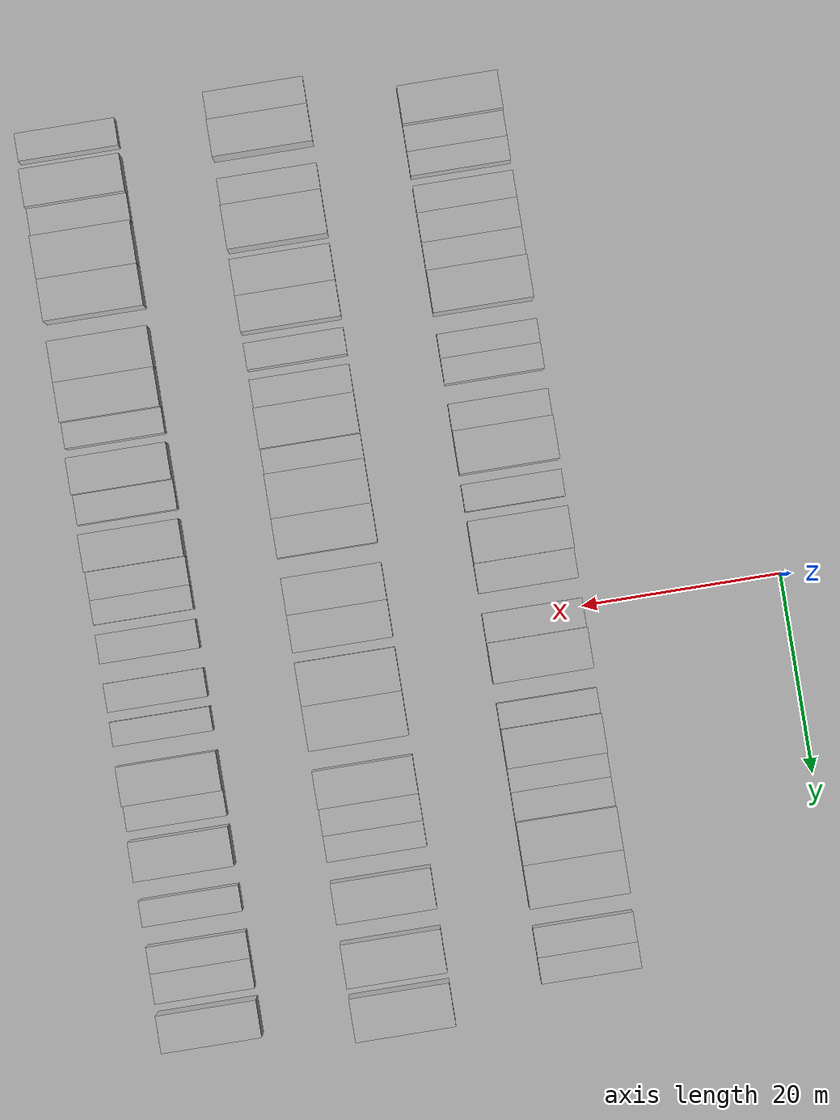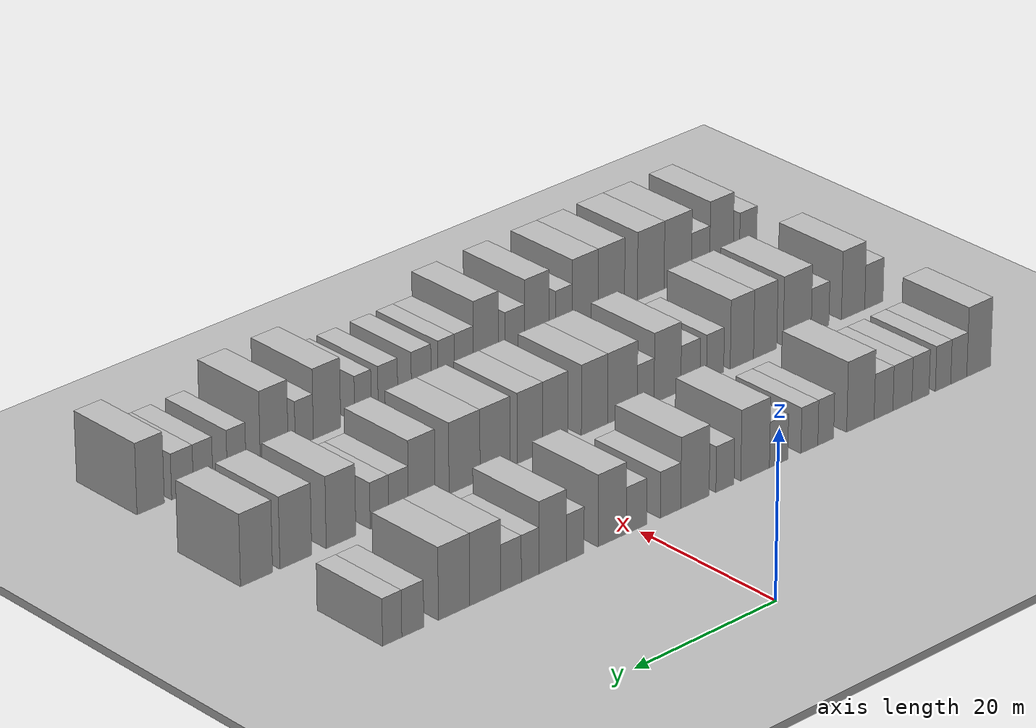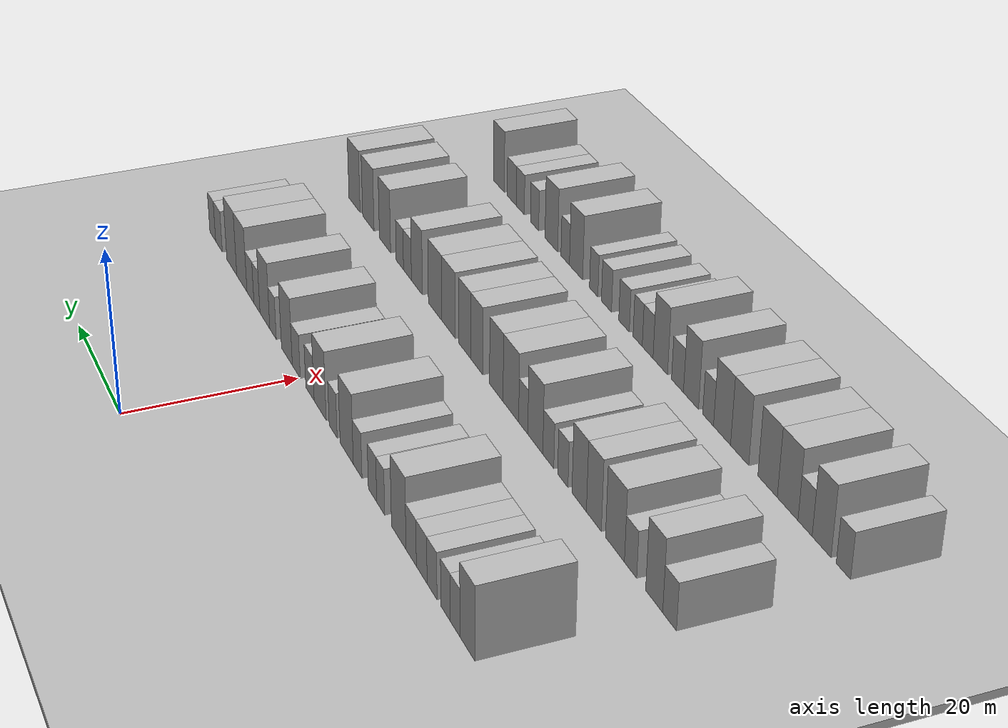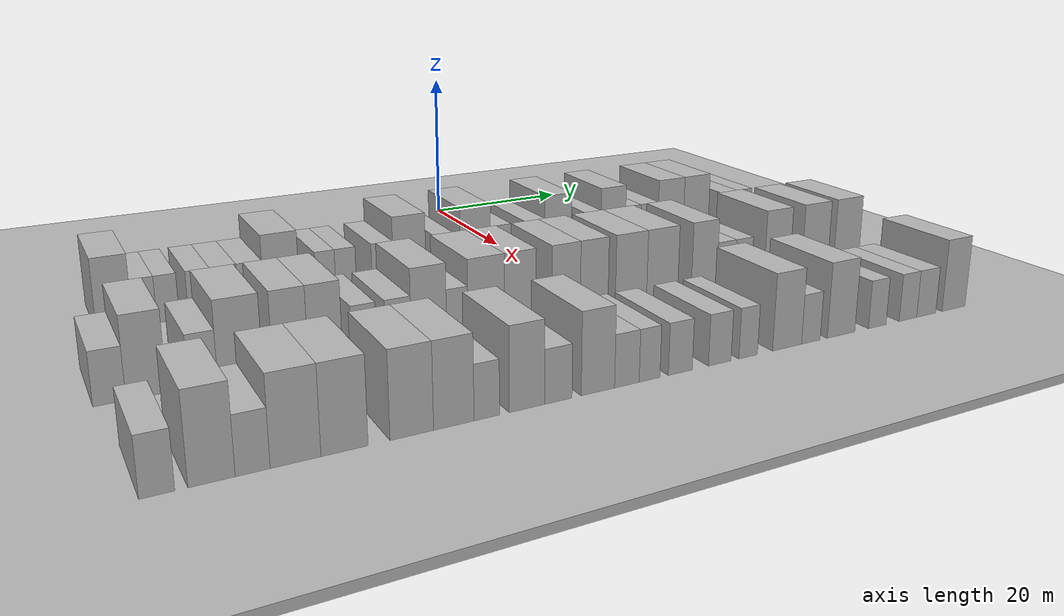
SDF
<sdf version="1.6">
 <world name="default">
  <include><name>ground_plane_1</name><uri>model://HANNAS_ground_plane</uri></include>
  <include>
   <name>ground_plane_2</name>
   <uri>model://HANNAS_ground_plane</uri>
   <pose>100 0 0  0 0 0</pose>
  </include>
  <model name="building_50">
   <static>1</static>
   <pose>25.0000 -51.5060 0 0.000000 0.000000 0.000000</pose>
   <link name="link">
    <pose>0 0 4.50 0 0 0</pose>
    <collision name="collision"><geometry><box><size>10.0000 3.7880 9.0000</size></box></geometry></collision>
    <visual name="visual">
     <cast_shadows>0</cast_shadows>
     <geometry><box><size>10.0000 3.7880 9.0000</size></box></geometry>
     <material>
      <script>
       <uri>model://HANNAS_wall/materials/scripts</uri>
       <uri>model://HANNAS_wall/materials/textures</uri>
       <name>vrc/HANNAS_wall</name>
      </script>
     </material>
    </visual>
   </link>
  </model>
  <model name="building_51">
   <static>1</static>
   <pose>25.0000 -48.3364 0 0.000000 0.000000 0.000000</pose>
   <link name="link">
    <pose>0 0 3.00 0 0 0</pose>
    <collision name="collision"><geometry><box><size>10.0000 2.5512 6.0000</size></box></geometry></collision>
    <visual name="visual">
     <cast_shadows>0</cast_shadows>
     <geometry><box><size>10.0000 2.5512 6.0000</size></box></geometry>
     <material>
      <script>
       <uri>model://HANNAS_wall/materials/scripts</uri>
       <uri>model://HANNAS_wall/materials/textures</uri>
       <name>vrc/HANNAS_wall</name>
      </script>
     </material>
    </visual>
   </link>
  </model>
  <model name="building_52">
   <static>1</static>
   <pose>25.0000 -45.8467 0 0.000000 0.000000 0.000000</pose>
   <link name="link">
    <pose>0 0 3.00 0 0 0</pose>
    <collision name="collision"><geometry><box><size>10.0000 2.4283 6.0000</size></box></geometry></collision>
    <visual name="visual">
     <cast_shadows>0</cast_shadows>
     <geometry><box><size>10.0000 2.4283 6.0000</size></box></geometry>
     <material>
      <script>
       <uri>model://HANNAS_wall/materials/scripts</uri>
       <uri>model://HANNAS_wall/materials/textures</uri>
       <name>vrc/HANNAS_wall</name>
      </script>
     </material>
    </visual>
   </link>
  </model>
  <model name="building_53">
   <static>1</static>
   <pose>25.0000 -42.2886 0 0.000000 0.000000 0.000000</pose>
   <link name="link">
    <pose>0 0 3.00 0 0 0</pose>
    <collision name="collision"><geometry><box><size>10.0000 2.6879 6.0000</size></box></geometry></collision>
    <visual name="visual">
     <cast_shadows>0</cast_shadows>
     <geometry><box><size>10.0000 2.6879 6.0000</size></box></geometry>
     <material>
      <script>
       <uri>model://HANNAS_wall/materials/scripts</uri>
       <uri>model://HANNAS_wall/materials/textures</uri>
       <name>vrc/HANNAS_wall</name>
      </script>
     </material>
    </visual>
   </link>
  </model>
  <model name="building_54">
   <static>1</static>
   <pose>25.0000 -39.4594 0 0.000000 0.000000 0.000000</pose>
   <link name="link">
    <pose>0 0 3.00 0 0 0</pose>
    <collision name="collision"><geometry><box><size>10.0000 2.9706 6.0000</size></box></geometry></collision>
    <visual name="visual">
     <cast_shadows>0</cast_shadows>
     <geometry><box><size>10.0000 2.9706 6.0000</size></box></geometry>
     <material>
      <script>
       <uri>model://HANNAS_wall/materials/scripts</uri>
       <uri>model://HANNAS_wall/materials/textures</uri>
       <name>vrc/HANNAS_wall</name>
      </script>
     </material>
    </visual>
   </link>
  </model>
  <model name="building_55">
   <static>1</static>
   <pose>25.0000 -36.5137 0 0.000000 0.000000 0.000000</pose>
   <link name="link">
    <pose>0 0 3.00 0 0 0</pose>
    <collision name="collision"><geometry><box><size>10.0000 2.9208 6.0000</size></box></geometry></collision>
    <visual name="visual">
     <cast_shadows>0</cast_shadows>
     <geometry><box><size>10.0000 2.9208 6.0000</size></box></geometry>
     <material>
      <script>
       <uri>model://HANNAS_wall/materials/scripts</uri>
       <uri>model://HANNAS_wall/materials/textures</uri>
       <name>vrc/HANNAS_wall</name>
      </script>
     </material>
    </visual>
   </link>
  </model>
  <model name="building_56">
   <static>1</static>
   <pose>25.0000 -32.9342 0 0.000000 0.000000 0.000000</pose>
   <link name="link">
    <pose>0 0 4.50 0 0 0</pose>
    <collision name="collision"><geometry><box><size>10.0000 4.2382 9.0000</size></box></geometry></collision>
    <visual name="visual">
     <cast_shadows>0</cast_shadows>
     <geometry><box><size>10.0000 4.2382 9.0000</size></box></geometry>
     <material>
      <script>
       <uri>model://HANNAS_wall/materials/scripts</uri>
       <uri>model://HANNAS_wall/materials/textures</uri>
       <name>vrc/HANNAS_wall</name>
      </script>
     </material>
    </visual>
   </link>
  </model>
  <model name="building_57">
   <static>1</static>
   <pose>25.0000 -27.6060 0 0.000000 0.000000 0.000000</pose>
   <link name="link">
    <pose>0 0 3.00 0 0 0</pose>
    <collision name="collision"><geometry><box><size>10.0000 2.4181 6.0000</size></box></geometry></collision>
    <visual name="visual">
     <cast_shadows>0</cast_shadows>
     <geometry><box><size>10.0000 2.4181 6.0000</size></box></geometry>
     <material>
      <script>
       <uri>model://HANNAS_wall/materials/scripts</uri>
       <uri>model://HANNAS_wall/materials/textures</uri>
       <name>vrc/HANNAS_wall</name>
      </script>
     </material>
    </visual>
   </link>
  </model>
  <model name="building_58">
   <static>1</static>
   <pose>25.0000 -25.1099 0 0.000000 0.000000 0.000000</pose>
   <link name="link">
    <pose>0 0 3.00 0 0 0</pose>
    <collision name="collision"><geometry><box><size>10.0000 2.5742 6.0000</size></box></geometry></collision>
    <visual name="visual">
     <cast_shadows>0</cast_shadows>
     <geometry><box><size>10.0000 2.5742 6.0000</size></box></geometry>
     <material>
      <script>
       <uri>model://HANNAS_wall/materials/scripts</uri>
       <uri>model://HANNAS_wall/materials/textures</uri>
       <name>vrc/HANNAS_wall</name>
      </script>
     </material>
    </visual>
   </link>
  </model>
  <model name="building_59">
   <static>1</static>
   <pose>25.0000 -20.4448 0 0.000000 0.000000 0.000000</pose>
   <link name="link">
    <pose>0 0 3.00 0 0 0</pose>
    <collision name="collision"><geometry><box><size>10.0000 2.7560 6.0000</size></box></geometry></collision>
    <visual name="visual">
     <cast_shadows>0</cast_shadows>
     <geometry><box><size>10.0000 2.7560 6.0000</size></box></geometry>
     <material>
      <script>
       <uri>model://HANNAS_wall/materials/scripts</uri>
       <uri>model://HANNAS_wall/materials/textures</uri>
       <name>vrc/HANNAS_wall</name>
      </script>
     </material>
    </visual>
   </link>
  </model>
  <model name="building_60">
   <static>1</static>
   <pose>25.0000 -16.9158 0 0.000000 0.000000 0.000000</pose>
   <link name="link">
    <pose>0 0 4.50 0 0 0</pose>
    <collision name="collision"><geometry><box><size>10.0000 4.3020 9.0000</size></box></geometry></collision>
    <visual name="visual">
     <cast_shadows>0</cast_shadows>
     <geometry><box><size>10.0000 4.3020 9.0000</size></box></geometry>
     <material>
      <script>
       <uri>model://HANNAS_wall/materials/scripts</uri>
       <uri>model://HANNAS_wall/materials/textures</uri>
       <name>vrc/HANNAS_wall</name>
      </script>
     </material>
    </visual>
   </link>
  </model>
  <model name="building_61">
   <static>1</static>
   <pose>25.0000 -12.4176 0 0.000000 0.000000 0.000000</pose>
   <link name="link">
    <pose>0 0 3.00 0 0 0</pose>
    <collision name="collision"><geometry><box><size>10.0000 2.6945 6.0000</size></box></geometry></collision>
    <visual name="visual">
     <cast_shadows>0</cast_shadows>
     <geometry><box><size>10.0000 2.6945 6.0000</size></box></geometry>
     <material>
      <script>
       <uri>model://HANNAS_wall/materials/scripts</uri>
       <uri>model://HANNAS_wall/materials/textures</uri>
       <name>vrc/HANNAS_wall</name>
      </script>
     </material>
    </visual>
   </link>
  </model>
  <model name="building_62">
   <static>1</static>
   <pose>25.0000 -7.9751 0 0.000000 0.000000 0.000000</pose>
   <link name="link">
    <pose>0 0 4.50 0 0 0</pose>
    <collision name="collision"><geometry><box><size>10.0000 4.1903 9.0000</size></box></geometry></collision>
    <visual name="visual">
     <cast_shadows>0</cast_shadows>
     <geometry><box><size>10.0000 4.1903 9.0000</size></box></geometry>
     <material>
      <script>
       <uri>model://HANNAS_wall/materials/scripts</uri>
       <uri>model://HANNAS_wall/materials/textures</uri>
       <name>vrc/HANNAS_wall</name>
      </script>
     </material>
    </visual>
   </link>
  </model>
  <model name="building_63">
   <static>1</static>
   <pose>25.0000 -4.3876 0 0.000000 0.000000 0.000000</pose>
   <link name="link">
    <pose>0 0 3.00 0 0 0</pose>
    <collision name="collision"><geometry><box><size>10.0000 2.9849 6.0000</size></box></geometry></collision>
    <visual name="visual">
     <cast_shadows>0</cast_shadows>
     <geometry><box><size>10.0000 2.9849 6.0000</size></box></geometry>
     <material>
      <script>
       <uri>model://HANNAS_wall/materials/scripts</uri>
       <uri>model://HANNAS_wall/materials/textures</uri>
       <name>vrc/HANNAS_wall</name>
      </script>
     </material>
    </visual>
   </link>
  </model>
  <model name="building_64">
   <static>1</static>
   <pose>25.0000 0.5690 0 0.000000 0.000000 0.000000</pose>
   <link name="link">
    <pose>0 0 3.00 0 0 0</pose>
    <collision name="collision"><geometry><box><size>10.0000 2.9282 6.0000</size></box></geometry></collision>
    <visual name="visual">
     <cast_shadows>0</cast_shadows>
     <geometry><box><size>10.0000 2.9282 6.0000</size></box></geometry>
     <material>
      <script>
       <uri>model://HANNAS_wall/materials/scripts</uri>
       <uri>model://HANNAS_wall/materials/textures</uri>
       <name>vrc/HANNAS_wall</name>
      </script>
     </material>
    </visual>
   </link>
  </model>
  <model name="building_65">
   <static>1</static>
   <pose>25.0000 4.0655 0 0.000000 0.000000 0.000000</pose>
   <link name="link">
    <pose>0 0 4.50 0 0 0</pose>
    <collision name="collision"><geometry><box><size>10.0000 4.0648 9.0000</size></box></geometry></collision>
    <visual name="visual">
     <cast_shadows>0</cast_shadows>
     <geometry><box><size>10.0000 4.0648 9.0000</size></box></geometry>
     <material>
      <script>
       <uri>model://HANNAS_wall/materials/scripts</uri>
       <uri>model://HANNAS_wall/materials/textures</uri>
       <name>vrc/HANNAS_wall</name>
      </script>
     </material>
    </visual>
   </link>
  </model>
  <model name="building_66">
   <static>1</static>
   <pose>25.0000 9.3608 0 0.000000 0.000000 0.000000</pose>
   <link name="link">
    <pose>0 0 3.00 0 0 0</pose>
    <collision name="collision"><geometry><box><size>10.0000 2.5258 6.0000</size></box></geometry></collision>
    <visual name="visual">
     <cast_shadows>0</cast_shadows>
     <geometry><box><size>10.0000 2.5258 6.0000</size></box></geometry>
     <material>
      <script>
       <uri>model://HANNAS_wall/materials/scripts</uri>
       <uri>model://HANNAS_wall/materials/textures</uri>
       <name>vrc/HANNAS_wall</name>
      </script>
     </material>
    </visual>
   </link>
  </model>
  <model name="building_67">
   <static>1</static>
   <pose>25.0000 12.5763 0 0.000000 0.000000 0.000000</pose>
   <link name="link">
    <pose>0 0 4.50 0 0 0</pose>
    <collision name="collision"><geometry><box><size>10.0000 3.9051 9.0000</size></box></geometry></collision>
    <visual name="visual">
     <cast_shadows>0</cast_shadows>
     <geometry><box><size>10.0000 3.9051 9.0000</size></box></geometry>
     <material>
      <script>
       <uri>model://HANNAS_wall/materials/scripts</uri>
       <uri>model://HANNAS_wall/materials/textures</uri>
       <name>vrc/HANNAS_wall</name>
      </script>
     </material>
    </visual>
   </link>
  </model>
  <model name="building_68">
   <static>1</static>
   <pose>25.0000 15.7561 0 0.000000 0.000000 0.000000</pose>
   <link name="link">
    <pose>0 0 3.00 0 0 0</pose>
    <collision name="collision"><geometry><box><size>10.0000 2.4546 6.0000</size></box></geometry></collision>
    <visual name="visual">
     <cast_shadows>0</cast_shadows>
     <geometry><box><size>10.0000 2.4546 6.0000</size></box></geometry>
     <material>
      <script>
       <uri>model://HANNAS_wall/materials/scripts</uri>
       <uri>model://HANNAS_wall/materials/textures</uri>
       <name>vrc/HANNAS_wall</name>
      </script>
     </material>
    </visual>
   </link>
  </model>
  <model name="building_69">
   <static>1</static>
   <pose>25.0000 18.4261 0 0.000000 0.000000 0.000000</pose>
   <link name="link">
    <pose>0 0 3.00 0 0 0</pose>
    <collision name="collision"><geometry><box><size>10.0000 2.8855 6.0000</size></box></geometry></collision>
    <visual name="visual">
     <cast_shadows>0</cast_shadows>
     <geometry><box><size>10.0000 2.8855 6.0000</size></box></geometry>
     <material>
      <script>
       <uri>model://HANNAS_wall/materials/scripts</uri>
       <uri>model://HANNAS_wall/materials/textures</uri>
       <name>vrc/HANNAS_wall</name>
      </script>
     </material>
    </visual>
   </link>
  </model>
  <model name="building_70">
   <static>1</static>
   <pose>25.0000 22.0129 0 0.000000 0.000000 0.000000</pose>
   <link name="link">
    <pose>0 0 4.50 0 0 0</pose>
    <collision name="collision"><geometry><box><size>10.0000 4.2880 9.0000</size></box></geometry></collision>
    <visual name="visual">
     <cast_shadows>0</cast_shadows>
     <geometry><box><size>10.0000 4.2880 9.0000</size></box></geometry>
     <material>
      <script>
       <uri>model://HANNAS_wall/materials/scripts</uri>
       <uri>model://HANNAS_wall/materials/textures</uri>
       <name>vrc/HANNAS_wall</name>
      </script>
     </material>
    </visual>
   </link>
  </model>
  <model name="building_71">
   <static>1</static>
   <pose>25.0000 26.3187 0 0.000000 0.000000 0.000000</pose>
   <link name="link">
    <pose>0 0 4.50 0 0 0</pose>
    <collision name="collision"><geometry><box><size>10.0000 4.3237 9.0000</size></box></geometry></collision>
    <visual name="visual">
     <cast_shadows>0</cast_shadows>
     <geometry><box><size>10.0000 4.3237 9.0000</size></box></geometry>
     <material>
      <script>
       <uri>model://HANNAS_wall/materials/scripts</uri>
       <uri>model://HANNAS_wall/materials/textures</uri>
       <name>vrc/HANNAS_wall</name>
      </script>
     </material>
    </visual>
   </link>
  </model>
  <model name="building_72">
   <static>1</static>
   <pose>25.0000 31.9745 0 0.000000 0.000000 0.000000</pose>
   <link name="link">
    <pose>0 0 3.00 0 0 0</pose>
    <collision name="collision"><geometry><box><size>10.0000 2.9878 6.0000</size></box></geometry></collision>
    <visual name="visual">
     <cast_shadows>0</cast_shadows>
     <geometry><box><size>10.0000 2.9878 6.0000</size></box></geometry>
     <material>
      <script>
       <uri>model://HANNAS_wall/materials/scripts</uri>
       <uri>model://HANNAS_wall/materials/textures</uri>
       <name>vrc/HANNAS_wall</name>
      </script>
     </material>
    </visual>
   </link>
  </model>
  <model name="building_73">
   <static>1</static>
   <pose>25.0000 34.7764 0 0.000000 0.000000 0.000000</pose>
   <link name="link">
    <pose>0 0 3.00 0 0 0</pose>
    <collision name="collision"><geometry><box><size>10.0000 2.6159 6.0000</size></box></geometry></collision>
    <visual name="visual">
     <cast_shadows>0</cast_shadows>
     <geometry><box><size>10.0000 2.6159 6.0000</size></box></geometry>
     <material>
      <script>
       <uri>model://HANNAS_wall/materials/scripts</uri>
       <uri>model://HANNAS_wall/materials/textures</uri>
       <name>vrc/HANNAS_wall</name>
      </script>
     </material>
    </visual>
   </link>
  </model>
  <model name="building_163">
   <static>1</static>
   <pose>44.0000 -54.6286 0 0.000000 0.000000 0.000000</pose>
   <link name="link">
    <pose>0 0 3.00 0 0 0</pose>
    <collision name="collision"><geometry><box><size>10.0000 2.9427 6.0000</size></box></geometry></collision>
    <visual name="visual">
     <cast_shadows>0</cast_shadows>
     <geometry><box><size>10.0000 2.9427 6.0000</size></box></geometry>
     <material>
      <script>
       <uri>model://HANNAS_wall/materials/scripts</uri>
       <uri>model://HANNAS_wall/materials/textures</uri>
       <name>vrc/HANNAS_wall</name>
      </script>
     </material>
    </visual>
   </link>
  </model>
  <model name="building_164">
   <static>1</static>
   <pose>44.0000 -51.2977 0 0.000000 0.000000 0.000000</pose>
   <link name="link">
    <pose>0 0 4.50 0 0 0</pose>
    <collision name="collision"><geometry><box><size>10.0000 3.7189 9.0000</size></box></geometry></collision>
    <visual name="visual">
     <cast_shadows>0</cast_shadows>
     <geometry><box><size>10.0000 3.7189 9.0000</size></box></geometry>
     <material>
      <script>
       <uri>model://HANNAS_wall/materials/scripts</uri>
       <uri>model://HANNAS_wall/materials/textures</uri>
       <name>vrc/HANNAS_wall</name>
      </script>
     </material>
    </visual>
   </link>
  </model>
  <model name="building_165">
   <static>1</static>
   <pose>44.0000 -46.0404 0 0.000000 0.000000 0.000000</pose>
   <link name="link">
    <pose>0 0 3.00 0 0 0</pose>
    <collision name="collision"><geometry><box><size>10.0000 2.7958 6.0000</size></box></geometry></collision>
    <visual name="visual">
     <cast_shadows>0</cast_shadows>
     <geometry><box><size>10.0000 2.7958 6.0000</size></box></geometry>
     <material>
      <script>
       <uri>model://HANNAS_wall/materials/scripts</uri>
       <uri>model://HANNAS_wall/materials/textures</uri>
       <name>vrc/HANNAS_wall</name>
      </script>
     </material>
    </visual>
   </link>
  </model>
  <model name="building_166">
   <static>1</static>
   <pose>44.0000 -42.4334 0 0.000000 0.000000 0.000000</pose>
   <link name="link">
    <pose>0 0 4.50 0 0 0</pose>
    <collision name="collision"><geometry><box><size>10.0000 4.4182 9.0000</size></box></geometry></collision>
    <visual name="visual">
     <cast_shadows>0</cast_shadows>
     <geometry><box><size>10.0000 4.4182 9.0000</size></box></geometry>
     <material>
      <script>
       <uri>model://HANNAS_wall/materials/scripts</uri>
       <uri>model://HANNAS_wall/materials/textures</uri>
       <name>vrc/HANNAS_wall</name>
      </script>
     </material>
    </visual>
   </link>
  </model>
  <model name="building_167">
   <static>1</static>
   <pose>44.0000 -37.4123 0 0.000000 0.000000 0.000000</pose>
   <link name="link">
    <pose>0 0 4.50 0 0 0</pose>
    <collision name="collision"><geometry><box><size>10.0000 3.6241 9.0000</size></box></geometry></collision>
    <visual name="visual">
     <cast_shadows>0</cast_shadows>
     <geometry><box><size>10.0000 3.6241 9.0000</size></box></geometry>
     <material>
      <script>
       <uri>model://HANNAS_wall/materials/scripts</uri>
       <uri>model://HANNAS_wall/materials/textures</uri>
       <name>vrc/HANNAS_wall</name>
      </script>
     </material>
    </visual>
   </link>
  </model>
  <model name="building_168">
   <static>1</static>
   <pose>44.0000 -33.7954 0 0.000000 0.000000 0.000000</pose>
   <link name="link">
    <pose>0 0 4.50 0 0 0</pose>
    <collision name="collision"><geometry><box><size>10.0000 3.6096 9.0000</size></box></geometry></collision>
    <visual name="visual">
     <cast_shadows>0</cast_shadows>
     <geometry><box><size>10.0000 3.6096 9.0000</size></box></geometry>
     <material>
      <script>
       <uri>model://HANNAS_wall/materials/scripts</uri>
       <uri>model://HANNAS_wall/materials/textures</uri>
       <name>vrc/HANNAS_wall</name>
      </script>
     </material>
    </visual>
   </link>
  </model>
  <model name="building_169">
   <static>1</static>
   <pose>44.0000 -29.6615 0 0.000000 0.000000 0.000000</pose>
   <link name="link">
    <pose>0 0 3.00 0 0 0</pose>
    <collision name="collision"><geometry><box><size>10.0000 2.6582 6.0000</size></box></geometry></collision>
    <visual name="visual">
     <cast_shadows>0</cast_shadows>
     <geometry><box><size>10.0000 2.6582 6.0000</size></box></geometry>
     <material>
      <script>
       <uri>model://HANNAS_wall/materials/scripts</uri>
       <uri>model://HANNAS_wall/materials/textures</uri>
       <name>vrc/HANNAS_wall</name>
      </script>
     </material>
    </visual>
   </link>
  </model>
  <model name="building_170">
   <static>1</static>
   <pose>44.0000 -25.8807 0 0.000000 0.000000 0.000000</pose>
   <link name="link">
    <pose>0 0 3.00 0 0 0</pose>
    <collision name="collision"><geometry><box><size>10.0000 2.9034 6.0000</size></box></geometry></collision>
    <visual name="visual">
     <cast_shadows>0</cast_shadows>
     <geometry><box><size>10.0000 2.9034 6.0000</size></box></geometry>
     <material>
      <script>
       <uri>model://HANNAS_wall/materials/scripts</uri>
       <uri>model://HANNAS_wall/materials/textures</uri>
       <name>vrc/HANNAS_wall</name>
      </script>
     </material>
    </visual>
   </link>
  </model>
  <model name="building_171">
   <static>1</static>
   <pose>44.0000 -22.3987 0 0.000000 0.000000 0.000000</pose>
   <link name="link">
    <pose>0 0 4.50 0 0 0</pose>
    <collision name="collision"><geometry><box><size>10.0000 4.0605 9.0000</size></box></geometry></collision>
    <visual name="visual">
     <cast_shadows>0</cast_shadows>
     <geometry><box><size>10.0000 4.0605 9.0000</size></box></geometry>
     <material>
      <script>
       <uri>model://HANNAS_wall/materials/scripts</uri>
       <uri>model://HANNAS_wall/materials/textures</uri>
       <name>vrc/HANNAS_wall</name>
      </script>
     </material>
    </visual>
   </link>
  </model>
  <model name="building_172">
   <static>1</static>
   <pose>44.0000 -19.1092 0 0.000000 0.000000 0.000000</pose>
   <link name="link">
    <pose>0 0 3.00 0 0 0</pose>
    <collision name="collision"><geometry><box><size>10.0000 2.5185 6.0000</size></box></geometry></collision>
    <visual name="visual">
     <cast_shadows>0</cast_shadows>
     <geometry><box><size>10.0000 2.5185 6.0000</size></box></geometry>
     <material>
      <script>
       <uri>model://HANNAS_wall/materials/scripts</uri>
       <uri>model://HANNAS_wall/materials/textures</uri>
       <name>vrc/HANNAS_wall</name>
      </script>
     </material>
    </visual>
   </link>
  </model>
  <model name="building_173">
   <static>1</static>
   <pose>44.0000 -15.6314 0 0.000000 0.000000 0.000000</pose>
   <link name="link">
    <pose>0 0 4.50 0 0 0</pose>
    <collision name="collision"><geometry><box><size>10.0000 4.4371 9.0000</size></box></geometry></collision>
    <visual name="visual">
     <cast_shadows>0</cast_shadows>
     <geometry><box><size>10.0000 4.4371 9.0000</size></box></geometry>
     <material>
      <script>
       <uri>model://HANNAS_wall/materials/scripts</uri>
       <uri>model://HANNAS_wall/materials/textures</uri>
       <name>vrc/HANNAS_wall</name>
      </script>
     </material>
    </visual>
   </link>
  </model>
  <model name="building_174">
   <static>1</static>
   <pose>44.0000 -11.4533 0 0.000000 0.000000 0.000000</pose>
   <link name="link">
    <pose>0 0 4.50 0 0 0</pose>
    <collision name="collision"><geometry><box><size>10.0000 3.9190 9.0000</size></box></geometry></collision>
    <visual name="visual">
     <cast_shadows>0</cast_shadows>
     <geometry><box><size>10.0000 3.9190 9.0000</size></box></geometry>
     <material>
      <script>
       <uri>model://HANNAS_wall/materials/scripts</uri>
       <uri>model://HANNAS_wall/materials/textures</uri>
       <name>vrc/HANNAS_wall</name>
      </script>
     </material>
    </visual>
   </link>
  </model>
  <model name="building_175">
   <static>1</static>
   <pose>44.0000 -5.6472 0 0.000000 0.000000 0.000000</pose>
   <link name="link">
    <pose>0 0 4.50 0 0 0</pose>
    <collision name="collision"><geometry><box><size>10.0000 3.6932 9.0000</size></box></geometry></collision>
    <visual name="visual">
     <cast_shadows>0</cast_shadows>
     <geometry><box><size>10.0000 3.6932 9.0000</size></box></geometry>
     <material>
      <script>
       <uri>model://HANNAS_wall/materials/scripts</uri>
       <uri>model://HANNAS_wall/materials/textures</uri>
       <name>vrc/HANNAS_wall</name>
      </script>
     </material>
    </visual>
   </link>
  </model>
  <model name="building_176">
   <static>1</static>
   <pose>44.0000 -1.9342 0 0.000000 0.000000 0.000000</pose>
   <link name="link">
    <pose>0 0 4.50 0 0 0</pose>
    <collision name="collision"><geometry><box><size>10.0000 3.7329 9.0000</size></box></geometry></collision>
    <visual name="visual">
     <cast_shadows>0</cast_shadows>
     <geometry><box><size>10.0000 3.7329 9.0000</size></box></geometry>
     <material>
      <script>
       <uri>model://HANNAS_wall/materials/scripts</uri>
       <uri>model://HANNAS_wall/materials/textures</uri>
       <name>vrc/HANNAS_wall</name>
      </script>
     </material>
    </visual>
   </link>
  </model>
  <model name="building_177">
   <static>1</static>
   <pose>44.0000 3.1020 0 0.000000 0.000000 0.000000</pose>
   <link name="link">
    <pose>0 0 4.50 0 0 0</pose>
    <collision name="collision"><geometry><box><size>10.0000 4.3395 9.0000</size></box></geometry></collision>
    <visual name="visual">
     <cast_shadows>0</cast_shadows>
     <geometry><box><size>10.0000 4.3395 9.0000</size></box></geometry>
     <material>
      <script>
       <uri>model://HANNAS_wall/materials/scripts</uri>
       <uri>model://HANNAS_wall/materials/textures</uri>
       <name>vrc/HANNAS_wall</name>
      </script>
     </material>
    </visual>
   </link>
  </model>
  <model name="building_178">
   <static>1</static>
   <pose>44.0000 7.4973 0 0.000000 0.000000 0.000000</pose>
   <link name="link">
    <pose>0 0 4.50 0 0 0</pose>
    <collision name="collision"><geometry><box><size>10.0000 4.4511 9.0000</size></box></geometry></collision>
    <visual name="visual">
     <cast_shadows>0</cast_shadows>
     <geometry><box><size>10.0000 4.4511 9.0000</size></box></geometry>
     <material>
      <script>
       <uri>model://HANNAS_wall/materials/scripts</uri>
       <uri>model://HANNAS_wall/materials/textures</uri>
       <name>vrc/HANNAS_wall</name>
      </script>
     </material>
    </visual>
   </link>
  </model>
  <model name="building_179">
   <static>1</static>
   <pose>44.0000 13.6088 0 0.000000 0.000000 0.000000</pose>
   <link name="link">
    <pose>0 0 4.50 0 0 0</pose>
    <collision name="collision"><geometry><box><size>10.0000 3.7719 9.0000</size></box></geometry></collision>
    <visual name="visual">
     <cast_shadows>0</cast_shadows>
     <geometry><box><size>10.0000 3.7719 9.0000</size></box></geometry>
     <material>
      <script>
       <uri>model://HANNAS_wall/materials/scripts</uri>
       <uri>model://HANNAS_wall/materials/textures</uri>
       <name>vrc/HANNAS_wall</name>
      </script>
     </material>
    </visual>
   </link>
  </model>
  <model name="building_180">
   <static>1</static>
   <pose>44.0000 16.8803 0 0.000000 0.000000 0.000000</pose>
   <link name="link">
    <pose>0 0 3.00 0 0 0</pose>
    <collision name="collision"><geometry><box><size>10.0000 2.7710 6.0000</size></box></geometry></collision>
    <visual name="visual">
     <cast_shadows>0</cast_shadows>
     <geometry><box><size>10.0000 2.7710 6.0000</size></box></geometry>
     <material>
      <script>
       <uri>model://HANNAS_wall/materials/scripts</uri>
       <uri>model://HANNAS_wall/materials/textures</uri>
       <name>vrc/HANNAS_wall</name>
      </script>
     </material>
    </visual>
   </link>
  </model>
  <model name="building_181">
   <static>1</static>
   <pose>44.0000 19.5615 0 0.000000 0.000000 0.000000</pose>
   <link name="link">
    <pose>0 0 3.00 0 0 0</pose>
    <collision name="collision"><geometry><box><size>10.0000 2.5913 6.0000</size></box></geometry></collision>
    <visual name="visual">
     <cast_shadows>0</cast_shadows>
     <geometry><box><size>10.0000 2.5913 6.0000</size></box></geometry>
     <material>
      <script>
       <uri>model://HANNAS_wall/materials/scripts</uri>
       <uri>model://HANNAS_wall/materials/textures</uri>
       <name>vrc/HANNAS_wall</name>
      </script>
     </material>
    </visual>
   </link>
  </model>
  <model name="building_182">
   <static>1</static>
   <pose>44.0000 24.9078 0 0.000000 0.000000 0.000000</pose>
   <link name="link">
    <pose>0 0 4.50 0 0 0</pose>
    <collision name="collision"><geometry><box><size>10.0000 4.1014 9.0000</size></box></geometry></collision>
    <visual name="visual">
     <cast_shadows>0</cast_shadows>
     <geometry><box><size>10.0000 4.1014 9.0000</size></box></geometry>
     <material>
      <script>
       <uri>model://HANNAS_wall/materials/scripts</uri>
       <uri>model://HANNAS_wall/materials/textures</uri>
       <name>vrc/HANNAS_wall</name>
      </script>
     </material>
    </visual>
   </link>
  </model>
  <model name="building_183">
   <static>1</static>
   <pose>44.0000 31.1353 0 0.000000 0.000000 0.000000</pose>
   <link name="link">
    <pose>0 0 4.50 0 0 0</pose>
    <collision name="collision"><geometry><box><size>10.0000 4.3536 9.0000</size></box></geometry></collision>
    <visual name="visual">
     <cast_shadows>0</cast_shadows>
     <geometry><box><size>10.0000 4.3536 9.0000</size></box></geometry>
     <material>
      <script>
       <uri>model://HANNAS_wall/materials/scripts</uri>
       <uri>model://HANNAS_wall/materials/textures</uri>
       <name>vrc/HANNAS_wall</name>
      </script>
     </material>
    </visual>
   </link>
  </model>
  <model name="building_184">
   <static>1</static>
   <pose>44.0000 36.4819 0 0.000000 0.000000 0.000000</pose>
   <link name="link">
    <pose>0 0 4.50 0 0 0</pose>
    <collision name="collision"><geometry><box><size>10.0000 4.3396 9.0000</size></box></geometry></collision>
    <visual name="visual">
     <cast_shadows>0</cast_shadows>
     <geometry><box><size>10.0000 4.3396 9.0000</size></box></geometry>
     <material>
      <script>
       <uri>model://HANNAS_wall/materials/scripts</uri>
       <uri>model://HANNAS_wall/materials/textures</uri>
       <name>vrc/HANNAS_wall</name>
      </script>
     </material>
    </visual>
   </link>
  </model>
  <model name="building_276">
   <static>1</static>
   <pose>63.0000 -53.6514 0 0.000000 0.000000 0.000000</pose>
   <link name="link">
    <pose>0 0 3.00 0 0 0</pose>
    <collision name="collision"><geometry><box><size>10.0000 2.7629 6.0000</size></box></geometry></collision>
    <visual name="visual">
     <cast_shadows>0</cast_shadows>
     <geometry><box><size>10.0000 2.7629 6.0000</size></box></geometry>
     <material>
      <script>
       <uri>model://HANNAS_wall/materials/scripts</uri>
       <uri>model://HANNAS_wall/materials/textures</uri>
       <name>vrc/HANNAS_wall</name>
      </script>
     </material>
    </visual>
   </link>
  </model>
  <model name="building_277">
   <static>1</static>
   <pose>63.0000 -49.3901 0 0.000000 0.000000 0.000000</pose>
   <link name="link">
    <pose>0 0 4.50 0 0 0</pose>
    <collision name="collision"><geometry><box><size>10.0000 3.7598 9.0000</size></box></geometry></collision>
    <visual name="visual">
     <cast_shadows>0</cast_shadows>
     <geometry><box><size>10.0000 3.7598 9.0000</size></box></geometry>
     <material>
      <script>
       <uri>model://HANNAS_wall/materials/scripts</uri>
       <uri>model://HANNAS_wall/materials/textures</uri>
       <name>vrc/HANNAS_wall</name>
      </script>
     </material>
    </visual>
   </link>
  </model>
  <model name="building_278">
   <static>1</static>
   <pose>63.0000 -46.0747 0 0.000000 0.000000 0.000000</pose>
   <link name="link">
    <pose>0 0 3.00 0 0 0</pose>
    <collision name="collision"><geometry><box><size>10.0000 2.8709 6.0000</size></box></geometry></collision>
    <visual name="visual">
     <cast_shadows>0</cast_shadows>
     <geometry><box><size>10.0000 2.8709 6.0000</size></box></geometry>
     <material>
      <script>
       <uri>model://HANNAS_wall/materials/scripts</uri>
       <uri>model://HANNAS_wall/materials/textures</uri>
       <name>vrc/HANNAS_wall</name>
      </script>
     </material>
    </visual>
   </link>
  </model>
  <model name="building_279">
   <static>1</static>
   <pose>63.0000 -42.4796 0 0.000000 0.000000 0.000000</pose>
   <link name="link">
    <pose>0 0 4.50 0 0 0</pose>
    <collision name="collision"><geometry><box><size>10.0000 4.3192 9.0000</size></box></geometry></collision>
    <visual name="visual">
     <cast_shadows>0</cast_shadows>
     <geometry><box><size>10.0000 4.3192 9.0000</size></box></geometry>
     <material>
      <script>
       <uri>model://HANNAS_wall/materials/scripts</uri>
       <uri>model://HANNAS_wall/materials/textures</uri>
       <name>vrc/HANNAS_wall</name>
      </script>
     </material>
    </visual>
   </link>
  </model>
  <model name="building_280">
   <static>1</static>
   <pose>63.0000 -38.2317 0 0.000000 0.000000 0.000000</pose>
   <link name="link">
    <pose>0 0 4.50 0 0 0</pose>
    <collision name="collision"><geometry><box><size>10.0000 4.1767 9.0000</size></box></geometry></collision>
    <visual name="visual">
     <cast_shadows>0</cast_shadows>
     <geometry><box><size>10.0000 4.1767 9.0000</size></box></geometry>
     <material>
      <script>
       <uri>model://HANNAS_wall/materials/scripts</uri>
       <uri>model://HANNAS_wall/materials/textures</uri>
       <name>vrc/HANNAS_wall</name>
      </script>
     </material>
    </visual>
   </link>
  </model>
  <model name="building_281">
   <static>1</static>
   <pose>63.0000 -32.0950 0 0.000000 0.000000 0.000000</pose>
   <link name="link">
    <pose>0 0 4.50 0 0 0</pose>
    <collision name="collision"><geometry><box><size>10.0000 4.0968 9.0000</size></box></geometry></collision>
    <visual name="visual">
     <cast_shadows>0</cast_shadows>
     <geometry><box><size>10.0000 4.0968 9.0000</size></box></geometry>
     <material>
      <script>
       <uri>model://HANNAS_wall/materials/scripts</uri>
       <uri>model://HANNAS_wall/materials/textures</uri>
       <name>vrc/HANNAS_wall</name>
      </script>
     </material>
    </visual>
   </link>
  </model>
  <model name="building_282">
   <static>1</static>
   <pose>63.0000 -28.0729 0 0.000000 0.000000 0.000000</pose>
   <link name="link">
    <pose>0 0 4.50 0 0 0</pose>
    <collision name="collision"><geometry><box><size>10.0000 3.9475 9.0000</size></box></geometry></collision>
    <visual name="visual">
     <cast_shadows>0</cast_shadows>
     <geometry><box><size>10.0000 3.9475 9.0000</size></box></geometry>
     <material>
      <script>
       <uri>model://HANNAS_wall/materials/scripts</uri>
       <uri>model://HANNAS_wall/materials/textures</uri>
       <name>vrc/HANNAS_wall</name>
      </script>
     </material>
    </visual>
   </link>
  </model>
  <model name="building_283">
   <static>1</static>
   <pose>63.0000 -24.8191 0 0.000000 0.000000 0.000000</pose>
   <link name="link">
    <pose>0 0 3.00 0 0 0</pose>
    <collision name="collision"><geometry><box><size>10.0000 2.5601 6.0000</size></box></geometry></collision>
    <visual name="visual">
     <cast_shadows>0</cast_shadows>
     <geometry><box><size>10.0000 2.5601 6.0000</size></box></geometry>
     <material>
      <script>
       <uri>model://HANNAS_wall/materials/scripts</uri>
       <uri>model://HANNAS_wall/materials/textures</uri>
       <name>vrc/HANNAS_wall</name>
      </script>
     </material>
    </visual>
   </link>
  </model>
  <model name="building_284">
   <static>1</static>
   <pose>63.0000 -20.7047 0 0.000000 0.000000 0.000000</pose>
   <link name="link">
    <pose>0 0 4.50 0 0 0</pose>
    <collision name="collision"><geometry><box><size>10.0000 3.6687 9.0000</size></box></geometry></collision>
    <visual name="visual">
     <cast_shadows>0</cast_shadows>
     <geometry><box><size>10.0000 3.6687 9.0000</size></box></geometry>
     <material>
      <script>
       <uri>model://HANNAS_wall/materials/scripts</uri>
       <uri>model://HANNAS_wall/materials/textures</uri>
       <name>vrc/HANNAS_wall</name>
      </script>
     </material>
    </visual>
   </link>
  </model>
  <model name="building_285">
   <static>1</static>
   <pose>63.0000 -17.3887 0 0.000000 0.000000 0.000000</pose>
   <link name="link">
    <pose>0 0 3.00 0 0 0</pose>
    <collision name="collision"><geometry><box><size>10.0000 2.9632 6.0000</size></box></geometry></collision>
    <visual name="visual">
     <cast_shadows>0</cast_shadows>
     <geometry><box><size>10.0000 2.9632 6.0000</size></box></geometry>
     <material>
      <script>
       <uri>model://HANNAS_wall/materials/scripts</uri>
       <uri>model://HANNAS_wall/materials/textures</uri>
       <name>vrc/HANNAS_wall</name>
      </script>
     </material>
    </visual>
   </link>
  </model>
  <model name="building_286">
   <static>1</static>
   <pose>63.0000 -13.0470 0 0.000000 0.000000 0.000000</pose>
   <link name="link">
    <pose>0 0 4.50 0 0 0</pose>
    <collision name="collision"><geometry><box><size>10.0000 3.7202 9.0000</size></box></geometry></collision>
    <visual name="visual">
     <cast_shadows>0</cast_shadows>
     <geometry><box><size>10.0000 3.7202 9.0000</size></box></geometry>
     <material>
      <script>
       <uri>model://HANNAS_wall/materials/scripts</uri>
       <uri>model://HANNAS_wall/materials/textures</uri>
       <name>vrc/HANNAS_wall</name>
      </script>
     </material>
    </visual>
   </link>
  </model>
  <model name="building_287">
   <static>1</static>
   <pose>63.0000 -9.7748 0 0.000000 0.000000 0.000000</pose>
   <link name="link">
    <pose>0 0 3.00 0 0 0</pose>
    <collision name="collision"><geometry><box><size>10.0000 2.8242 6.0000</size></box></geometry></collision>
    <visual name="visual">
     <cast_shadows>0</cast_shadows>
     <geometry><box><size>10.0000 2.8242 6.0000</size></box></geometry>
     <material>
      <script>
       <uri>model://HANNAS_wall/materials/scripts</uri>
       <uri>model://HANNAS_wall/materials/textures</uri>
       <name>vrc/HANNAS_wall</name>
      </script>
     </material>
    </visual>
   </link>
  </model>
  <model name="building_288">
   <static>1</static>
   <pose>63.0000 -7.1424 0 0.000000 0.000000 0.000000</pose>
   <link name="link">
    <pose>0 0 3.00 0 0 0</pose>
    <collision name="collision"><geometry><box><size>10.0000 2.4405 6.0000</size></box></geometry></collision>
    <visual name="visual">
     <cast_shadows>0</cast_shadows>
     <geometry><box><size>10.0000 2.4405 6.0000</size></box></geometry>
     <material>
      <script>
       <uri>model://HANNAS_wall/materials/scripts</uri>
       <uri>model://HANNAS_wall/materials/textures</uri>
       <name>vrc/HANNAS_wall</name>
      </script>
     </material>
    </visual>
   </link>
  </model>
  <model name="building_289">
   <static>1</static>
   <pose>63.0000 -3.4793 0 0.000000 0.000000 0.000000</pose>
   <link name="link">
    <pose>0 0 3.00 0 0 0</pose>
    <collision name="collision"><geometry><box><size>10.0000 2.8857 6.0000</size></box></geometry></collision>
    <visual name="visual">
     <cast_shadows>0</cast_shadows>
     <geometry><box><size>10.0000 2.8857 6.0000</size></box></geometry>
     <material>
      <script>
       <uri>model://HANNAS_wall/materials/scripts</uri>
       <uri>model://HANNAS_wall/materials/textures</uri>
       <name>vrc/HANNAS_wall</name>
      </script>
     </material>
    </visual>
   </link>
  </model>
  <model name="building_290">
   <static>1</static>
   <pose>63.0000 1.3857 0 0.000000 0.000000 0.000000</pose>
   <link name="link">
    <pose>0 0 3.00 0 0 0</pose>
    <collision name="collision"><geometry><box><size>10.0000 2.8444 6.0000</size></box></geometry></collision>
    <visual name="visual">
     <cast_shadows>0</cast_shadows>
     <geometry><box><size>10.0000 2.8444 6.0000</size></box></geometry>
     <material>
      <script>
       <uri>model://HANNAS_wall/materials/scripts</uri>
       <uri>model://HANNAS_wall/materials/textures</uri>
       <name>vrc/HANNAS_wall</name>
      </script>
     </material>
    </visual>
   </link>
  </model>
  <model name="building_291">
   <static>1</static>
   <pose>63.0000 5.0103 0 0.000000 0.000000 0.000000</pose>
   <link name="link">
    <pose>0 0 3.00 0 0 0</pose>
    <collision name="collision"><geometry><box><size>10.0000 2.4047 6.0000</size></box></geometry></collision>
    <visual name="visual">
     <cast_shadows>0</cast_shadows>
     <geometry><box><size>10.0000 2.4047 6.0000</size></box></geometry>
     <material>
      <script>
       <uri>model://HANNAS_wall/materials/scripts</uri>
       <uri>model://HANNAS_wall/materials/textures</uri>
       <name>vrc/HANNAS_wall</name>
      </script>
     </material>
    </visual>
   </link>
  </model>
  <model name="building_292">
   <static>1</static>
   <pose>63.0000 10.1679 0 0.000000 0.000000 0.000000</pose>
   <link name="link">
    <pose>0 0 4.50 0 0 0</pose>
    <collision name="collision"><geometry><box><size>10.0000 3.9105 9.0000</size></box></geometry></collision>
    <visual name="visual">
     <cast_shadows>0</cast_shadows>
     <geometry><box><size>10.0000 3.9105 9.0000</size></box></geometry>
     <material>
      <script>
       <uri>model://HANNAS_wall/materials/scripts</uri>
       <uri>model://HANNAS_wall/materials/textures</uri>
       <name>vrc/HANNAS_wall</name>
      </script>
     </material>
    </visual>
   </link>
  </model>
  <model name="building_293">
   <static>1</static>
   <pose>63.0000 13.4111 0 0.000000 0.000000 0.000000</pose>
   <link name="link">
    <pose>0 0 3.00 0 0 0</pose>
    <collision name="collision"><geometry><box><size>10.0000 2.5759 6.0000</size></box></geometry></collision>
    <visual name="visual">
     <cast_shadows>0</cast_shadows>
     <geometry><box><size>10.0000 2.5759 6.0000</size></box></geometry>
     <material>
      <script>
       <uri>model://HANNAS_wall/materials/scripts</uri>
       <uri>model://HANNAS_wall/materials/textures</uri>
       <name>vrc/HANNAS_wall</name>
      </script>
     </material>
    </visual>
   </link>
  </model>
  <model name="building_294">
   <static>1</static>
   <pose>63.0000 17.6661 0 0.000000 0.000000 0.000000</pose>
   <link name="link">
    <pose>0 0 4.50 0 0 0</pose>
    <collision name="collision"><geometry><box><size>10.0000 3.9340 9.0000</size></box></geometry></collision>
    <visual name="visual">
     <cast_shadows>0</cast_shadows>
     <geometry><box><size>10.0000 3.9340 9.0000</size></box></geometry>
     <material>
      <script>
       <uri>model://HANNAS_wall/materials/scripts</uri>
       <uri>model://HANNAS_wall/materials/textures</uri>
       <name>vrc/HANNAS_wall</name>
      </script>
     </material>
    </visual>
   </link>
  </model>
  <model name="building_295">
   <static>1</static>
   <pose>63.0000 22.9434 0 0.000000 0.000000 0.000000</pose>
   <link name="link">
    <pose>0 0 3.00 0 0 0</pose>
    <collision name="collision"><geometry><box><size>10.0000 2.6206 6.0000</size></box></geometry></collision>
    <visual name="visual">
     <cast_shadows>0</cast_shadows>
     <geometry><box><size>10.0000 2.6206 6.0000</size></box></geometry>
     <material>
      <script>
       <uri>model://HANNAS_wall/materials/scripts</uri>
       <uri>model://HANNAS_wall/materials/textures</uri>
       <name>vrc/HANNAS_wall</name>
      </script>
     </material>
    </visual>
   </link>
  </model>
  <model name="building_296">
   <static>1</static>
   <pose>63.0000 27.5975 0 0.000000 0.000000 0.000000</pose>
   <link name="link">
    <pose>0 0 3.00 0 0 0</pose>
    <collision name="collision"><geometry><box><size>10.0000 2.6876 6.0000</size></box></geometry></collision>
    <visual name="visual">
     <cast_shadows>0</cast_shadows>
     <geometry><box><size>10.0000 2.6876 6.0000</size></box></geometry>
     <material>
      <script>
       <uri>model://HANNAS_wall/materials/scripts</uri>
       <uri>model://HANNAS_wall/materials/textures</uri>
       <name>vrc/HANNAS_wall</name>
      </script>
     </material>
    </visual>
   </link>
  </model>
  <model name="building_297">
   <static>1</static>
   <pose>63.0000 30.4385 0 0.000000 0.000000 0.000000</pose>
   <link name="link">
    <pose>0 0 3.00 0 0 0</pose>
    <collision name="collision"><geometry><box><size>10.0000 2.9945 6.0000</size></box></geometry></collision>
    <visual name="visual">
     <cast_shadows>0</cast_shadows>
     <geometry><box><size>10.0000 2.9945 6.0000</size></box></geometry>
     <material>
      <script>
       <uri>model://HANNAS_wall/materials/scripts</uri>
       <uri>model://HANNAS_wall/materials/textures</uri>
       <name>vrc/HANNAS_wall</name>
      </script>
     </material>
    </visual>
   </link>
  </model>
  <model name="building_298">
   <static>1</static>
   <pose>63.0000 34.8022 0 0.000000 0.000000 0.000000</pose>
   <link name="link">
    <pose>0 0 4.50 0 0 0</pose>
    <collision name="collision"><geometry><box><size>10.0000 3.7328 9.0000</size></box></geometry></collision>
    <visual name="visual">
     <cast_shadows>0</cast_shadows>
     <geometry><box><size>10.0000 3.7328 9.0000</size></box></geometry>
     <material>
      <script>
       <uri>model://HANNAS_wall/materials/scripts</uri>
       <uri>model://HANNAS_wall/materials/textures</uri>
       <name>vrc/HANNAS_wall</name>
      </script>
     </material>
    </visual>
   </link>
  </model>
 </world>
</sdf>
